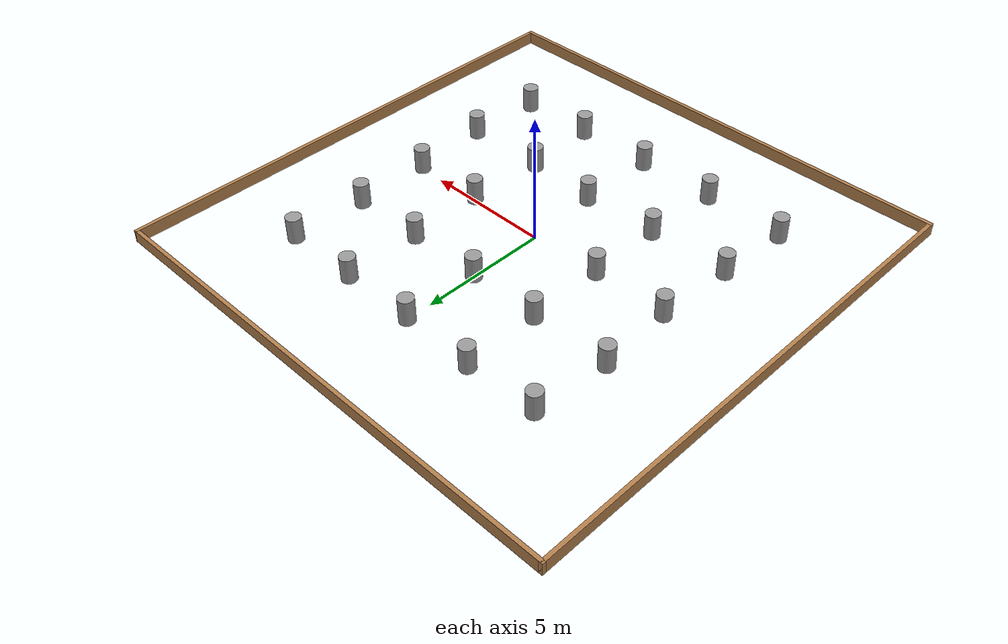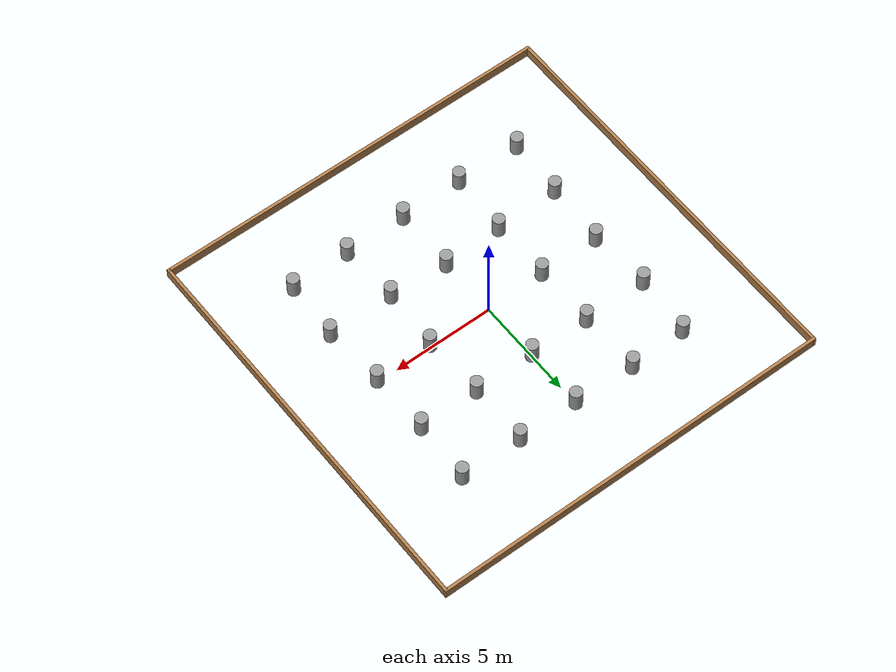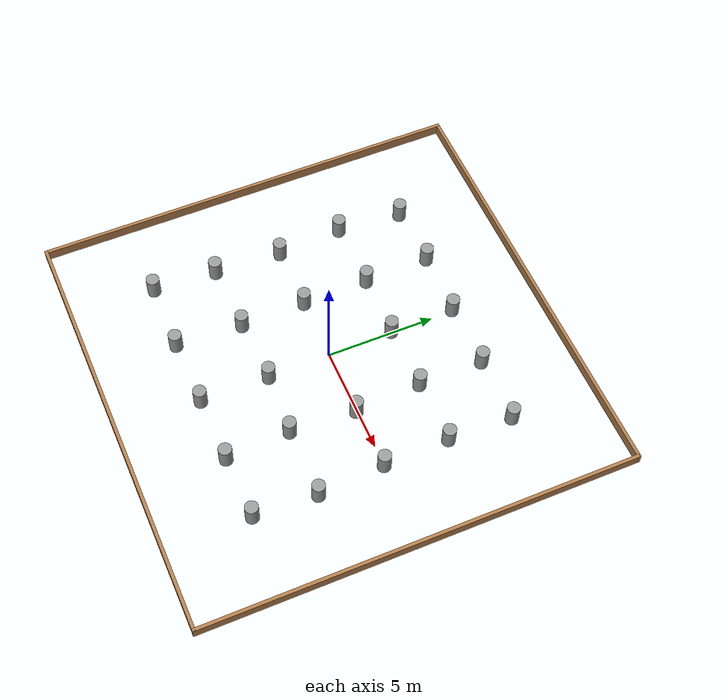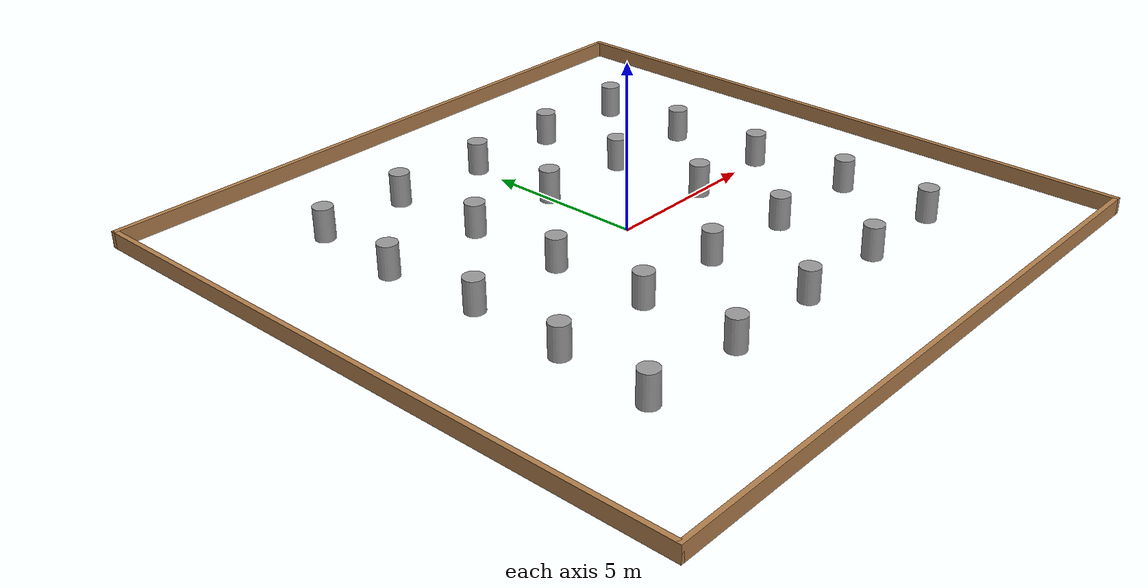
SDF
<sdf version="1.6">
 <model name="columns_model">
  <link name="Wall_0">
   <pose>0 9.925 0 0 -0 0</pose>
   <visual name="Wall_0_Visual">
    <pose>0 0 0.25 0 -0 0</pose>
    <geometry><box><size>20 0.15 0.5</size></box></geometry>
    <material>
     <script><uri>file://media/materials/scripts/gazebo.material</uri><name>Gazebo/Wood</name></script>
     <ambient>1 1 1 1</ambient>
    </material>
   </visual>
   <collision name="Wall_0_Collision">
    <pose>0 0 0.25 0 -0 0</pose>
    <geometry><box><size>20 0.15 0.5</size></box></geometry>
    <surface>
     <friction>
      <ode><mu>1</mu><mu2>1</mu2><fdir1>0 0 0</fdir1><slip1>0</slip1><slip2>0</slip2></ode>
      <torsional>
       <coefficient>1</coefficient>
       <patch_radius>0</patch_radius>
       <surface_radius>0</surface_radius>
       <use_patch_radius>1</use_patch_radius>
       <ode><slip>0</slip></ode>
      </torsional>
     </friction>
     <bounce><restitution_coefficient>0</restitution_coefficient><threshold>1e+06</threshold></bounce>
     <contact>
      <collide_without_contact>0</collide_without_contact>
      <collide_without_contact_bitmask>1</collide_without_contact_bitmask>
      <collide_bitmask>1</collide_bitmask>
      <ode>
       <soft_cfm>0</soft_cfm>
       <soft_erp>0.2</soft_erp>
       <kp>1e+13</kp>
       <kd>1</kd>
       <max_vel>0.01</max_vel>
       <min_depth>0</min_depth>
      </ode>
      <bullet>
       <split_impulse>1</split_impulse>
       <split_impulse_penetration_threshold>-0.01</split_impulse_penetration_threshold>
       <soft_cfm>0</soft_cfm>
       <soft_erp>0.2</soft_erp>
       <kp>1e+13</kp>
       <kd>1</kd>
      </bullet>
     </contact>
    </surface>
   </collision>
  </link>
  <link name="Wall_2">
   <pose>-9.925 0 0 0 0 -1.5708</pose>
   <visual name="Wall_2_Visual">
    <pose>0 0 0.25 0 -0 0</pose>
    <geometry><box><size>20 0.15 0.5</size></box></geometry>
    <material>
     <script><uri>file://media/materials/scripts/gazebo.material</uri><name>Gazebo/Wood</name></script>
     <ambient>1 1 1 1</ambient>
    </material>
   </visual>
   <collision name="Wall_2_Collision">
    <pose>0 0 0.25 0 -0 0</pose>
    <geometry><box><size>20 0.15 0.5</size></box></geometry>
    <surface>
     <friction>
      <ode><mu>1</mu><mu2>1</mu2><fdir1>0 0 0</fdir1><slip1>0</slip1><slip2>0</slip2></ode>
      <torsional>
       <coefficient>1</coefficient>
       <patch_radius>0</patch_radius>
       <surface_radius>0</surface_radius>
       <use_patch_radius>1</use_patch_radius>
       <ode><slip>0</slip></ode>
      </torsional>
     </friction>
     <bounce><restitution_coefficient>0</restitution_coefficient><threshold>1e+06</threshold></bounce>
     <contact>
      <collide_without_contact>0</collide_without_contact>
      <collide_without_contact_bitmask>1</collide_without_contact_bitmask>
      <collide_bitmask>1</collide_bitmask>
      <ode>
       <soft_cfm>0</soft_cfm>
       <soft_erp>0.2</soft_erp>
       <kp>1e+13</kp>
       <kd>1</kd>
       <max_vel>0.01</max_vel>
       <min_depth>0</min_depth>
      </ode>
      <bullet>
       <split_impulse>1</split_impulse>
       <split_impulse_penetration_threshold>-0.01</split_impulse_penetration_threshold>
       <soft_cfm>0</soft_cfm>
       <soft_erp>0.2</soft_erp>
       <kp>1e+13</kp>
       <kd>1</kd>
      </bullet>
     </contact>
    </surface>
   </collision>
  </link>
  <link name="Wall_3">
   <pose>0 -9.925 0 0 -0 0</pose>
   <visual name="Wall_3_Visual">
    <pose>0 0 0.25 0 -0 0</pose>
    <geometry><box><size>20 0.15 0.5</size></box></geometry>
    <material>
     <script><uri>file://media/materials/scripts/gazebo.material</uri><name>Gazebo/Wood</name></script>
     <ambient>1 1 1 1</ambient>
    </material>
   </visual>
   <collision name="Wall_3_Collision">
    <pose>0 0 0.25 0 -0 0</pose>
    <geometry><box><size>20 0.15 0.5</size></box></geometry>
    <surface>
     <friction>
      <ode><mu>1</mu><mu2>1</mu2><fdir1>0 0 0</fdir1><slip1>0</slip1><slip2>0</slip2></ode>
      <torsional>
       <coefficient>1</coefficient>
       <patch_radius>0</patch_radius>
       <surface_radius>0</surface_radius>
       <use_patch_radius>1</use_patch_radius>
       <ode><slip>0</slip></ode>
      </torsional>
     </friction>
     <bounce><restitution_coefficient>0</restitution_coefficient><threshold>1e+06</threshold></bounce>
     <contact>
      <collide_without_contact>0</collide_without_contact>
      <collide_without_contact_bitmask>1</collide_without_contact_bitmask>
      <collide_bitmask>1</collide_bitmask>
      <ode>
       <soft_cfm>0</soft_cfm>
       <soft_erp>0.2</soft_erp>
       <kp>1e+13</kp>
       <kd>1</kd>
       <max_vel>0.01</max_vel>
       <min_depth>0</min_depth>
      </ode>
      <bullet>
       <split_impulse>1</split_impulse>
       <split_impulse_penetration_threshold>-0.01</split_impulse_penetration_threshold>
       <soft_cfm>0</soft_cfm>
       <soft_erp>0.2</soft_erp>
       <kp>1e+13</kp>
       <kd>1</kd>
      </bullet>
     </contact>
    </surface>
   </collision>
  </link>
  <link name="Wall_4">
   <pose>9.925 0 0 0 -0 1.5708</pose>
   <visual name="Wall_4_Visual">
    <pose>0 0 0.25 0 -0 0</pose>
    <geometry><box><size>20 0.15 0.5</size></box></geometry>
    <material>
     <script><uri>file://media/materials/scripts/gazebo.material</uri><name>Gazebo/Wood</name></script>
     <ambient>1 1 1 1</ambient>
    </material>
   </visual>
   <collision name="Wall_4_Collision">
    <pose>0 0 0.25 0 -0 0</pose>
    <geometry><box><size>20 0.15 0.5</size></box></geometry>
    <surface>
     <friction>
      <ode><mu>1</mu><mu2>1</mu2><fdir1>0 0 0</fdir1><slip1>0</slip1><slip2>0</slip2></ode>
      <torsional>
       <coefficient>1</coefficient>
       <patch_radius>0</patch_radius>
       <surface_radius>0</surface_radius>
       <use_patch_radius>1</use_patch_radius>
       <ode><slip>0</slip></ode>
      </torsional>
     </friction>
     <bounce><restitution_coefficient>0</restitution_coefficient><threshold>1e+06</threshold></bounce>
     <contact>
      <collide_without_contact>0</collide_without_contact>
      <collide_without_contact_bitmask>1</collide_without_contact_bitmask>
      <collide_bitmask>1</collide_bitmask>
      <ode>
       <soft_cfm>0</soft_cfm>
       <soft_erp>0.2</soft_erp>
       <kp>1e+13</kp>
       <kd>1</kd>
       <max_vel>0.01</max_vel>
       <min_depth>0</min_depth>
      </ode>
      <bullet>
       <split_impulse>1</split_impulse>
       <split_impulse_penetration_threshold>-0.01</split_impulse_penetration_threshold>
       <soft_cfm>0</soft_cfm>
       <soft_erp>0.2</soft_erp>
       <kp>1e+13</kp>
       <kd>1</kd>
      </bullet>
     </contact>
    </surface>
   </collision>
  </link>
  <link name="link_0">
   <inertial>
    <mass>1</mass>
    <inertia><ixx>0.145833</ixx><ixy>0</ixy><ixz>0</ixz><iyy>0.145833</iyy><iyz>0</iyz><izz>0.125</izz></inertia>
   </inertial>
   <pose>0.107953 -2.9087 0.5 0 -0 0</pose>
   <visual name="visual">
    <geometry><cylinder><radius>0.3</radius><length>1</length></cylinder></geometry>
    <material>
     <lighting>1</lighting>
     <script><uri>file://media/materials/scripts/gazebo.material</uri><name>Gazebo/Grey</name></script>
     <shader type="vertex"><normal_map>__default__</normal_map></shader>
     <ambient>0.3 0.3 0.3 1</ambient>
     <diffuse>0.7 0.7 0.7 1</diffuse>
     <specular>0.01 0.01 0.01 1</specular>
     <emissive>0 0 0 1</emissive>
    </material>
   </visual>
   <collision name="collision">
    <geometry><cylinder><radius>0.3</radius><length>1</length></cylinder></geometry>
    <surface>
     <friction>
      <ode><mu>1</mu><mu2>1</mu2><fdir1>0 0 0</fdir1><slip1>0</slip1><slip2>0</slip2></ode>
      <torsional>
       <coefficient>1</coefficient>
       <patch_radius>0</patch_radius>
       <surface_radius>0</surface_radius>
       <use_patch_radius>1</use_patch_radius>
       <ode><slip>0</slip></ode>
      </torsional>
     </friction>
     <bounce><restitution_coefficient>0</restitution_coefficient><threshold>1e+06</threshold></bounce>
     <contact>
      <collide_without_contact>0</collide_without_contact>
      <collide_without_contact_bitmask>1</collide_without_contact_bitmask>
      <collide_bitmask>1</collide_bitmask>
      <ode>
       <soft_cfm>0</soft_cfm>
       <soft_erp>0.2</soft_erp>
       <kp>1e+13</kp>
       <kd>1</kd>
       <max_vel>0.01</max_vel>
       <min_depth>0</min_depth>
      </ode>
      <bullet>
       <split_impulse>1</split_impulse>
       <split_impulse_penetration_threshold>-0.01</split_impulse_penetration_threshold>
       <soft_cfm>0</soft_cfm>
       <soft_erp>0.2</soft_erp>
       <kp>1e+13</kp>
       <kd>1</kd>
      </bullet>
     </contact>
    </surface>
   </collision>
  </link>
  <link name="link_0_clone">
   <inertial>
    <mass>1</mass>
    <inertia><ixx>0.145833</ixx><ixy>0</ixy><ixz>0</ixz><iyy>0.145833</iyy><iyz>0</iyz><izz>0.125</izz></inertia>
   </inertial>
   <pose>0 3 0.5 0 -0 0</pose>
   <visual name="visual">
    <geometry><cylinder><radius>0.3</radius><length>1</length></cylinder></geometry>
    <material>
     <lighting>1</lighting>
     <script><uri>file://media/materials/scripts/gazebo.material</uri><name>Gazebo/Grey</name></script>
     <shader type="vertex"><normal_map>__default__</normal_map></shader>
     <ambient>0.3 0.3 0.3 1</ambient>
     <diffuse>0.7 0.7 0.7 1</diffuse>
     <specular>0.01 0.01 0.01 1</specular>
     <emissive>0 0 0 1</emissive>
    </material>
   </visual>
   <collision name="collision">
    <geometry><cylinder><radius>0.3</radius><length>1</length></cylinder></geometry>
    <surface>
     <friction>
      <ode><mu>1</mu><mu2>1</mu2><fdir1>0 0 0</fdir1><slip1>0</slip1><slip2>0</slip2></ode>
      <torsional>
       <coefficient>1</coefficient>
       <patch_radius>0</patch_radius>
       <surface_radius>0</surface_radius>
       <use_patch_radius>1</use_patch_radius>
       <ode><slip>0</slip></ode>
      </torsional>
     </friction>
     <bounce><restitution_coefficient>0</restitution_coefficient><threshold>1e+06</threshold></bounce>
     <contact>
      <collide_without_contact>0</collide_without_contact>
      <collide_without_contact_bitmask>1</collide_without_contact_bitmask>
      <collide_bitmask>1</collide_bitmask>
      <ode>
       <soft_cfm>0</soft_cfm>
       <soft_erp>0.2</soft_erp>
       <kp>1e+13</kp>
       <kd>1</kd>
       <max_vel>0.01</max_vel>
       <min_depth>0</min_depth>
      </ode>
      <bullet>
       <split_impulse>1</split_impulse>
       <split_impulse_penetration_threshold>-0.01</split_impulse_penetration_threshold>
       <soft_cfm>0</soft_cfm>
       <soft_erp>0.2</soft_erp>
       <kp>1e+13</kp>
       <kd>1</kd>
      </bullet>
     </contact>
    </surface>
   </collision>
  </link>
  <link name="link_0_clone_0">
   <inertial>
    <mass>1</mass>
    <inertia><ixx>0.145833</ixx><ixy>0</ixy><ixz>0</ixz><iyy>0.145833</iyy><iyz>0</iyz><izz>0.125</izz></inertia>
   </inertial>
   <pose>3.15995 -0.065507 0.5 0 -0 0</pose>
   <visual name="visual">
    <geometry><cylinder><radius>0.3</radius><length>1</length></cylinder></geometry>
    <material>
     <lighting>1</lighting>
     <script><uri>file://media/materials/scripts/gazebo.material</uri><name>Gazebo/Grey</name></script>
     <shader type="vertex"><normal_map>__default__</normal_map></shader>
     <ambient>0.3 0.3 0.3 1</ambient>
     <diffuse>0.7 0.7 0.7 1</diffuse>
     <specular>0.01 0.01 0.01 1</specular>
     <emissive>0 0 0 1</emissive>
    </material>
   </visual>
   <collision name="collision">
    <geometry><cylinder><radius>0.3</radius><length>1</length></cylinder></geometry>
    <surface>
     <friction>
      <ode><mu>1</mu><mu2>1</mu2><fdir1>0 0 0</fdir1><slip1>0</slip1><slip2>0</slip2></ode>
      <torsional>
       <coefficient>1</coefficient>
       <patch_radius>0</patch_radius>
       <surface_radius>0</surface_radius>
       <use_patch_radius>1</use_patch_radius>
       <ode><slip>0</slip></ode>
      </torsional>
     </friction>
     <bounce><restitution_coefficient>0</restitution_coefficient><threshold>1e+06</threshold></bounce>
     <contact>
      <collide_without_contact>0</collide_without_contact>
      <collide_without_contact_bitmask>1</collide_without_contact_bitmask>
      <collide_bitmask>1</collide_bitmask>
      <ode>
       <soft_cfm>0</soft_cfm>
       <soft_erp>0.2</soft_erp>
       <kp>1e+13</kp>
       <kd>1</kd>
       <max_vel>0.01</max_vel>
       <min_depth>0</min_depth>
      </ode>
      <bullet>
       <split_impulse>1</split_impulse>
       <split_impulse_penetration_threshold>-0.01</split_impulse_penetration_threshold>
       <soft_cfm>0</soft_cfm>
       <soft_erp>0.2</soft_erp>
       <kp>1e+13</kp>
       <kd>1</kd>
      </bullet>
     </contact>
    </surface>
   </collision>
  </link>
  <link name="link_0_clone_1">
   <inertial>
    <mass>1</mass>
    <inertia><ixx>0.145833</ixx><ixy>0</ixy><ixz>0</ixz><iyy>0.145833</iyy><iyz>0</iyz><izz>0.125</izz></inertia>
   </inertial>
   <pose>2.98902 -3.08623 0.5 0 -0 0</pose>
   <visual name="visual">
    <geometry><cylinder><radius>0.3</radius><length>1</length></cylinder></geometry>
    <material>
     <lighting>1</lighting>
     <script><uri>file://media/materials/scripts/gazebo.material</uri><name>Gazebo/Grey</name></script>
     <shader type="vertex"><normal_map>__default__</normal_map></shader>
     <ambient>0.3 0.3 0.3 1</ambient>
     <diffuse>0.7 0.7 0.7 1</diffuse>
     <specular>0.01 0.01 0.01 1</specular>
     <emissive>0 0 0 1</emissive>
    </material>
   </visual>
   <collision name="collision">
    <geometry><cylinder><radius>0.3</radius><length>1</length></cylinder></geometry>
    <surface>
     <friction>
      <ode><mu>1</mu><mu2>1</mu2><fdir1>0 0 0</fdir1><slip1>0</slip1><slip2>0</slip2></ode>
      <torsional>
       <coefficient>1</coefficient>
       <patch_radius>0</patch_radius>
       <surface_radius>0</surface_radius>
       <use_patch_radius>1</use_patch_radius>
       <ode><slip>0</slip></ode>
      </torsional>
     </friction>
     <bounce><restitution_coefficient>0</restitution_coefficient><threshold>1e+06</threshold></bounce>
     <contact>
      <collide_without_contact>0</collide_without_contact>
      <collide_without_contact_bitmask>1</collide_without_contact_bitmask>
      <collide_bitmask>1</collide_bitmask>
      <ode>
       <soft_cfm>0</soft_cfm>
       <soft_erp>0.2</soft_erp>
       <kp>1e+13</kp>
       <kd>1</kd>
       <max_vel>0.01</max_vel>
       <min_depth>0</min_depth>
      </ode>
      <bullet>
       <split_impulse>1</split_impulse>
       <split_impulse_penetration_threshold>-0.01</split_impulse_penetration_threshold>
       <soft_cfm>0</soft_cfm>
       <soft_erp>0.2</soft_erp>
       <kp>1e+13</kp>
       <kd>1</kd>
      </bullet>
     </contact>
    </surface>
   </collision>
  </link>
  <link name="link_0_clone_10">
   <inertial>
    <mass>1</mass>
    <inertia><ixx>0.145833</ixx><ixy>0</ixy><ixz>0</ixz><iyy>0.145833</iyy><iyz>0</iyz><izz>0.125</izz></inertia>
   </inertial>
   <pose>-6.22561 -6.00388 0.5 0 -0 0</pose>
   <visual name="visual">
    <geometry><cylinder><radius>0.3</radius><length>1</length></cylinder></geometry>
    <material>
     <lighting>1</lighting>
     <script><uri>file://media/materials/scripts/gazebo.material</uri><name>Gazebo/Grey</name></script>
     <shader type="vertex"><normal_map>__default__</normal_map></shader>
     <ambient>0.3 0.3 0.3 1</ambient>
     <diffuse>0.7 0.7 0.7 1</diffuse>
     <specular>0.01 0.01 0.01 1</specular>
     <emissive>0 0 0 1</emissive>
    </material>
   </visual>
   <collision name="collision">
    <geometry><cylinder><radius>0.3</radius><length>1</length></cylinder></geometry>
    <surface>
     <friction>
      <ode><mu>1</mu><mu2>1</mu2><fdir1>0 0 0</fdir1><slip1>0</slip1><slip2>0</slip2></ode>
      <torsional>
       <coefficient>1</coefficient>
       <patch_radius>0</patch_radius>
       <surface_radius>0</surface_radius>
       <use_patch_radius>1</use_patch_radius>
       <ode><slip>0</slip></ode>
      </torsional>
     </friction>
     <bounce><restitution_coefficient>0</restitution_coefficient><threshold>1e+06</threshold></bounce>
     <contact>
      <collide_without_contact>0</collide_without_contact>
      <collide_without_contact_bitmask>1</collide_without_contact_bitmask>
      <collide_bitmask>1</collide_bitmask>
      <ode>
       <soft_cfm>0</soft_cfm>
       <soft_erp>0.2</soft_erp>
       <kp>1e+13</kp>
       <kd>1</kd>
       <max_vel>0.01</max_vel>
       <min_depth>0</min_depth>
      </ode>
      <bullet>
       <split_impulse>1</split_impulse>
       <split_impulse_penetration_threshold>-0.01</split_impulse_penetration_threshold>
       <soft_cfm>0</soft_cfm>
       <soft_erp>0.2</soft_erp>
       <kp>1e+13</kp>
       <kd>1</kd>
      </bullet>
     </contact>
    </surface>
   </collision>
  </link>
  <link name="link_0_clone_11">
   <inertial>
    <mass>1</mass>
    <inertia><ixx>0.145833</ixx><ixy>0</ixy><ixz>0</ixz><iyy>0.145833</iyy><iyz>0</iyz><izz>0.125</izz></inertia>
   </inertial>
   <pose>-6.0599 -3.08284 0.5 0 -0 0</pose>
   <visual name="visual">
    <geometry><cylinder><radius>0.3</radius><length>1</length></cylinder></geometry>
    <material>
     <lighting>1</lighting>
     <script><uri>file://media/materials/scripts/gazebo.material</uri><name>Gazebo/Grey</name></script>
     <shader type="vertex"><normal_map>__default__</normal_map></shader>
     <ambient>0.3 0.3 0.3 1</ambient>
     <diffuse>0.7 0.7 0.7 1</diffuse>
     <specular>0.01 0.01 0.01 1</specular>
     <emissive>0 0 0 1</emissive>
    </material>
   </visual>
   <collision name="collision">
    <geometry><cylinder><radius>0.3</radius><length>1</length></cylinder></geometry>
    <surface>
     <friction>
      <ode><mu>1</mu><mu2>1</mu2><fdir1>0 0 0</fdir1><slip1>0</slip1><slip2>0</slip2></ode>
      <torsional>
       <coefficient>1</coefficient>
       <patch_radius>0</patch_radius>
       <surface_radius>0</surface_radius>
       <use_patch_radius>1</use_patch_radius>
       <ode><slip>0</slip></ode>
      </torsional>
     </friction>
     <bounce><restitution_coefficient>0</restitution_coefficient><threshold>1e+06</threshold></bounce>
     <contact>
      <collide_without_contact>0</collide_without_contact>
      <collide_without_contact_bitmask>1</collide_without_contact_bitmask>
      <collide_bitmask>1</collide_bitmask>
      <ode>
       <soft_cfm>0</soft_cfm>
       <soft_erp>0.2</soft_erp>
       <kp>1e+13</kp>
       <kd>1</kd>
       <max_vel>0.01</max_vel>
       <min_depth>0</min_depth>
      </ode>
      <bullet>
       <split_impulse>1</split_impulse>
       <split_impulse_penetration_threshold>-0.01</split_impulse_penetration_threshold>
       <soft_cfm>0</soft_cfm>
       <soft_erp>0.2</soft_erp>
       <kp>1e+13</kp>
       <kd>1</kd>
      </bullet>
     </contact>
    </surface>
   </collision>
  </link>
  <link name="link_0_clone_12">
   <inertial>
    <mass>1</mass>
    <inertia><ixx>0.145833</ixx><ixy>0</ixy><ixz>0</ixz><iyy>0.145833</iyy><iyz>0</iyz><izz>0.125</izz></inertia>
   </inertial>
   <pose>-5.89543 0.018668 0.5 0 -0 0</pose>
   <visual name="visual">
    <geometry><cylinder><radius>0.3</radius><length>1</length></cylinder></geometry>
    <material>
     <lighting>1</lighting>
     <script><uri>file://media/materials/scripts/gazebo.material</uri><name>Gazebo/Grey</name></script>
     <shader type="vertex"><normal_map>__default__</normal_map></shader>
     <ambient>0.3 0.3 0.3 1</ambient>
     <diffuse>0.7 0.7 0.7 1</diffuse>
     <specular>0.01 0.01 0.01 1</specular>
     <emissive>0 0 0 1</emissive>
    </material>
   </visual>
   <collision name="collision">
    <geometry><cylinder><radius>0.3</radius><length>1</length></cylinder></geometry>
    <surface>
     <friction>
      <ode><mu>1</mu><mu2>1</mu2><fdir1>0 0 0</fdir1><slip1>0</slip1><slip2>0</slip2></ode>
      <torsional>
       <coefficient>1</coefficient>
       <patch_radius>0</patch_radius>
       <surface_radius>0</surface_radius>
       <use_patch_radius>1</use_patch_radius>
       <ode><slip>0</slip></ode>
      </torsional>
     </friction>
     <bounce><restitution_coefficient>0</restitution_coefficient><threshold>1e+06</threshold></bounce>
     <contact>
      <collide_without_contact>0</collide_without_contact>
      <collide_without_contact_bitmask>1</collide_without_contact_bitmask>
      <collide_bitmask>1</collide_bitmask>
      <ode>
       <soft_cfm>0</soft_cfm>
       <soft_erp>0.2</soft_erp>
       <kp>1e+13</kp>
       <kd>1</kd>
       <max_vel>0.01</max_vel>
       <min_depth>0</min_depth>
      </ode>
      <bullet>
       <split_impulse>1</split_impulse>
       <split_impulse_penetration_threshold>-0.01</split_impulse_penetration_threshold>
       <soft_cfm>0</soft_cfm>
       <soft_erp>0.2</soft_erp>
       <kp>1e+13</kp>
       <kd>1</kd>
      </bullet>
     </contact>
    </surface>
   </collision>
  </link>
  <link name="link_0_clone_13">
   <inertial>
    <mass>1</mass>
    <inertia><ixx>0.145833</ixx><ixy>0</ixy><ixz>0</ixz><iyy>0.145833</iyy><iyz>0</iyz><izz>0.125</izz></inertia>
   </inertial>
   <pose>-6.09693 3.05557 0.5 0 -0 0</pose>
   <visual name="visual">
    <geometry><cylinder><radius>0.3</radius><length>1</length></cylinder></geometry>
    <material>
     <lighting>1</lighting>
     <script><uri>file://media/materials/scripts/gazebo.material</uri><name>Gazebo/Grey</name></script>
     <shader type="vertex"><normal_map>__default__</normal_map></shader>
     <ambient>0.3 0.3 0.3 1</ambient>
     <diffuse>0.7 0.7 0.7 1</diffuse>
     <specular>0.01 0.01 0.01 1</specular>
     <emissive>0 0 0 1</emissive>
    </material>
   </visual>
   <collision name="collision">
    <geometry><cylinder><radius>0.3</radius><length>1</length></cylinder></geometry>
    <surface>
     <friction>
      <ode><mu>1</mu><mu2>1</mu2><fdir1>0 0 0</fdir1><slip1>0</slip1><slip2>0</slip2></ode>
      <torsional>
       <coefficient>1</coefficient>
       <patch_radius>0</patch_radius>
       <surface_radius>0</surface_radius>
       <use_patch_radius>1</use_patch_radius>
       <ode><slip>0</slip></ode>
      </torsional>
     </friction>
     <bounce><restitution_coefficient>0</restitution_coefficient><threshold>1e+06</threshold></bounce>
     <contact>
      <collide_without_contact>0</collide_without_contact>
      <collide_without_contact_bitmask>1</collide_without_contact_bitmask>
      <collide_bitmask>1</collide_bitmask>
      <ode>
       <soft_cfm>0</soft_cfm>
       <soft_erp>0.2</soft_erp>
       <kp>1e+13</kp>
       <kd>1</kd>
       <max_vel>0.01</max_vel>
       <min_depth>0</min_depth>
      </ode>
      <bullet>
       <split_impulse>1</split_impulse>
       <split_impulse_penetration_threshold>-0.01</split_impulse_penetration_threshold>
       <soft_cfm>0</soft_cfm>
       <soft_erp>0.2</soft_erp>
       <kp>1e+13</kp>
       <kd>1</kd>
      </bullet>
     </contact>
    </surface>
   </collision>
  </link>
  <link name="link_0_clone_14">
   <inertial>
    <mass>1</mass>
    <inertia><ixx>0.145833</ixx><ixy>0</ixy><ixz>0</ixz><iyy>0.145833</iyy><iyz>0</iyz><izz>0.125</izz></inertia>
   </inertial>
   <pose>-5.85129 6.03455 0.5 0 -0 0</pose>
   <visual name="visual">
    <geometry><cylinder><radius>0.3</radius><length>1</length></cylinder></geometry>
    <material>
     <lighting>1</lighting>
     <script><uri>file://media/materials/scripts/gazebo.material</uri><name>Gazebo/Grey</name></script>
     <shader type="vertex"><normal_map>__default__</normal_map></shader>
     <ambient>0.3 0.3 0.3 1</ambient>
     <diffuse>0.7 0.7 0.7 1</diffuse>
     <specular>0.01 0.01 0.01 1</specular>
     <emissive>0 0 0 1</emissive>
    </material>
   </visual>
   <collision name="collision">
    <geometry><cylinder><radius>0.3</radius><length>1</length></cylinder></geometry>
    <surface>
     <friction>
      <ode><mu>1</mu><mu2>1</mu2><fdir1>0 0 0</fdir1><slip1>0</slip1><slip2>0</slip2></ode>
      <torsional>
       <coefficient>1</coefficient>
       <patch_radius>0</patch_radius>
       <surface_radius>0</surface_radius>
       <use_patch_radius>1</use_patch_radius>
       <ode><slip>0</slip></ode>
      </torsional>
     </friction>
     <bounce><restitution_coefficient>0</restitution_coefficient><threshold>1e+06</threshold></bounce>
     <contact>
      <collide_without_contact>0</collide_without_contact>
      <collide_without_contact_bitmask>1</collide_without_contact_bitmask>
      <collide_bitmask>1</collide_bitmask>
      <ode>
       <soft_cfm>0</soft_cfm>
       <soft_erp>0.2</soft_erp>
       <kp>1e+13</kp>
       <kd>1</kd>
       <max_vel>0.01</max_vel>
       <min_depth>0</min_depth>
      </ode>
      <bullet>
       <split_impulse>1</split_impulse>
       <split_impulse_penetration_threshold>-0.01</split_impulse_penetration_threshold>
       <soft_cfm>0</soft_cfm>
       <soft_erp>0.2</soft_erp>
       <kp>1e+13</kp>
       <kd>1</kd>
      </bullet>
     </contact>
    </surface>
   </collision>
  </link>
  <link name="link_0_clone_15">
   <inertial>
    <mass>1</mass>
    <inertia><ixx>0.145833</ixx><ixy>0</ixy><ixz>0</ixz><iyy>0.145833</iyy><iyz>0</iyz><izz>0.125</izz></inertia>
   </inertial>
   <pose>-3.00934 6.11637 0.5 0 -0 0</pose>
   <visual name="visual">
    <geometry><cylinder><radius>0.3</radius><length>1</length></cylinder></geometry>
    <material>
     <lighting>1</lighting>
     <script><uri>file://media/materials/scripts/gazebo.material</uri><name>Gazebo/Grey</name></script>
     <shader type="vertex"><normal_map>__default__</normal_map></shader>
     <ambient>0.3 0.3 0.3 1</ambient>
     <diffuse>0.7 0.7 0.7 1</diffuse>
     <specular>0.01 0.01 0.01 1</specular>
     <emissive>0 0 0 1</emissive>
    </material>
   </visual>
   <collision name="collision">
    <geometry><cylinder><radius>0.3</radius><length>1</length></cylinder></geometry>
    <surface>
     <friction>
      <ode><mu>1</mu><mu2>1</mu2><fdir1>0 0 0</fdir1><slip1>0</slip1><slip2>0</slip2></ode>
      <torsional>
       <coefficient>1</coefficient>
       <patch_radius>0</patch_radius>
       <surface_radius>0</surface_radius>
       <use_patch_radius>1</use_patch_radius>
       <ode><slip>0</slip></ode>
      </torsional>
     </friction>
     <bounce><restitution_coefficient>0</restitution_coefficient><threshold>1e+06</threshold></bounce>
     <contact>
      <collide_without_contact>0</collide_without_contact>
      <collide_without_contact_bitmask>1</collide_without_contact_bitmask>
      <collide_bitmask>1</collide_bitmask>
      <ode>
       <soft_cfm>0</soft_cfm>
       <soft_erp>0.2</soft_erp>
       <kp>1e+13</kp>
       <kd>1</kd>
       <max_vel>0.01</max_vel>
       <min_depth>0</min_depth>
      </ode>
      <bullet>
       <split_impulse>1</split_impulse>
       <split_impulse_penetration_threshold>-0.01</split_impulse_penetration_threshold>
       <soft_cfm>0</soft_cfm>
       <soft_erp>0.2</soft_erp>
       <kp>1e+13</kp>
       <kd>1</kd>
      </bullet>
     </contact>
    </surface>
   </collision>
  </link>
  <link name="link_0_clone_16">
   <inertial>
    <mass>1</mass>
    <inertia><ixx>0.145833</ixx><ixy>0</ixy><ixz>0</ixz><iyy>0.145833</iyy><iyz>0</iyz><izz>0.125</izz></inertia>
   </inertial>
   <pose>0 6 0.5 0 -0 0</pose>
   <visual name="visual">
    <geometry><cylinder><radius>0.3</radius><length>1</length></cylinder></geometry>
    <material>
     <lighting>1</lighting>
     <script><uri>file://media/materials/scripts/gazebo.material</uri><name>Gazebo/Grey</name></script>
     <shader type="vertex"><normal_map>__default__</normal_map></shader>
     <ambient>0.3 0.3 0.3 1</ambient>
     <diffuse>0.7 0.7 0.7 1</diffuse>
     <specular>0.01 0.01 0.01 1</specular>
     <emissive>0 0 0 1</emissive>
    </material>
   </visual>
   <collision name="collision">
    <geometry><cylinder><radius>0.3</radius><length>1</length></cylinder></geometry>
    <surface>
     <friction>
      <ode><mu>1</mu><mu2>1</mu2><fdir1>0 0 0</fdir1><slip1>0</slip1><slip2>0</slip2></ode>
      <torsional>
       <coefficient>1</coefficient>
       <patch_radius>0</patch_radius>
       <surface_radius>0</surface_radius>
       <use_patch_radius>1</use_patch_radius>
       <ode><slip>0</slip></ode>
      </torsional>
     </friction>
     <bounce><restitution_coefficient>0</restitution_coefficient><threshold>1e+06</threshold></bounce>
     <contact>
      <collide_without_contact>0</collide_without_contact>
      <collide_without_contact_bitmask>1</collide_without_contact_bitmask>
      <collide_bitmask>1</collide_bitmask>
      <ode>
       <soft_cfm>0</soft_cfm>
       <soft_erp>0.2</soft_erp>
       <kp>1e+13</kp>
       <kd>1</kd>
       <max_vel>0.01</max_vel>
       <min_depth>0</min_depth>
      </ode>
      <bullet>
       <split_impulse>1</split_impulse>
       <split_impulse_penetration_threshold>-0.01</split_impulse_penetration_threshold>
       <soft_cfm>0</soft_cfm>
       <soft_erp>0.2</soft_erp>
       <kp>1e+13</kp>
       <kd>1</kd>
      </bullet>
     </contact>
    </surface>
   </collision>
  </link>
  <link name="link_0_clone_17">
   <inertial>
    <mass>1</mass>
    <inertia><ixx>0.145833</ixx><ixy>0</ixy><ixz>0</ixz><iyy>0.145833</iyy><iyz>0</iyz><izz>0.125</izz></inertia>
   </inertial>
   <pose>3 6 0.5 0 -0 0</pose>
   <visual name="visual">
    <geometry><cylinder><radius>0.3</radius><length>1</length></cylinder></geometry>
    <material>
     <lighting>1</lighting>
     <script><uri>file://media/materials/scripts/gazebo.material</uri><name>Gazebo/Grey</name></script>
     <shader type="vertex"><normal_map>__default__</normal_map></shader>
     <ambient>0.3 0.3 0.3 1</ambient>
     <diffuse>0.7 0.7 0.7 1</diffuse>
     <specular>0.01 0.01 0.01 1</specular>
     <emissive>0 0 0 1</emissive>
    </material>
   </visual>
   <collision name="collision">
    <geometry><cylinder><radius>0.3</radius><length>1</length></cylinder></geometry>
    <surface>
     <friction>
      <ode><mu>1</mu><mu2>1</mu2><fdir1>0 0 0</fdir1><slip1>0</slip1><slip2>0</slip2></ode>
      <torsional>
       <coefficient>1</coefficient>
       <patch_radius>0</patch_radius>
       <surface_radius>0</surface_radius>
       <use_patch_radius>1</use_patch_radius>
       <ode><slip>0</slip></ode>
      </torsional>
     </friction>
     <bounce><restitution_coefficient>0</restitution_coefficient><threshold>1e+06</threshold></bounce>
     <contact>
      <collide_without_contact>0</collide_without_contact>
      <collide_without_contact_bitmask>1</collide_without_contact_bitmask>
      <collide_bitmask>1</collide_bitmask>
      <ode>
       <soft_cfm>0</soft_cfm>
       <soft_erp>0.2</soft_erp>
       <kp>1e+13</kp>
       <kd>1</kd>
       <max_vel>0.01</max_vel>
       <min_depth>0</min_depth>
      </ode>
      <bullet>
       <split_impulse>1</split_impulse>
       <split_impulse_penetration_threshold>-0.01</split_impulse_penetration_threshold>
       <soft_cfm>0</soft_cfm>
       <soft_erp>0.2</soft_erp>
       <kp>1e+13</kp>
       <kd>1</kd>
      </bullet>
     </contact>
    </surface>
   </collision>
  </link>
  <link name="link_0_clone_18">
   <inertial>
    <mass>1</mass>
    <inertia><ixx>0.145833</ixx><ixy>0</ixy><ixz>0</ixz><iyy>0.145833</iyy><iyz>0</iyz><izz>0.125</izz></inertia>
   </inertial>
   <pose>6.22974 -3.10295 0.5 0 -0 0</pose>
   <visual name="visual">
    <geometry><cylinder><radius>0.3</radius><length>1</length></cylinder></geometry>
    <material>
     <lighting>1</lighting>
     <script><uri>file://media/materials/scripts/gazebo.material</uri><name>Gazebo/Grey</name></script>
     <shader type="vertex"><normal_map>__default__</normal_map></shader>
     <ambient>0.3 0.3 0.3 1</ambient>
     <diffuse>0.7 0.7 0.7 1</diffuse>
     <specular>0.01 0.01 0.01 1</specular>
     <emissive>0 0 0 1</emissive>
    </material>
   </visual>
   <collision name="collision">
    <geometry><cylinder><radius>0.3</radius><length>1</length></cylinder></geometry>
    <surface>
     <friction>
      <ode><mu>1</mu><mu2>1</mu2><fdir1>0 0 0</fdir1><slip1>0</slip1><slip2>0</slip2></ode>
      <torsional>
       <coefficient>1</coefficient>
       <patch_radius>0</patch_radius>
       <surface_radius>0</surface_radius>
       <use_patch_radius>1</use_patch_radius>
       <ode><slip>0</slip></ode>
      </torsional>
     </friction>
     <bounce><restitution_coefficient>0</restitution_coefficient><threshold>1e+06</threshold></bounce>
     <contact>
      <collide_without_contact>0</collide_without_contact>
      <collide_without_contact_bitmask>1</collide_without_contact_bitmask>
      <collide_bitmask>1</collide_bitmask>
      <ode>
       <soft_cfm>0</soft_cfm>
       <soft_erp>0.2</soft_erp>
       <kp>1e+13</kp>
       <kd>1</kd>
       <max_vel>0.01</max_vel>
       <min_depth>0</min_depth>
      </ode>
      <bullet>
       <split_impulse>1</split_impulse>
       <split_impulse_penetration_threshold>-0.01</split_impulse_penetration_threshold>
       <soft_cfm>0</soft_cfm>
       <soft_erp>0.2</soft_erp>
       <kp>1e+13</kp>
       <kd>1</kd>
      </bullet>
     </contact>
    </surface>
   </collision>
  </link>
  <link name="link_0_clone_19">
   <inertial>
    <mass>1</mass>
    <inertia><ixx>0.145833</ixx><ixy>0</ixy><ixz>0</ixz><iyy>0.145833</iyy><iyz>0</iyz><izz>0.125</izz></inertia>
   </inertial>
   <pose>6.01692 -0.020745 0.5 0 -0 0</pose>
   <visual name="visual">
    <geometry><cylinder><radius>0.3</radius><length>1</length></cylinder></geometry>
    <material>
     <lighting>1</lighting>
     <script><uri>file://media/materials/scripts/gazebo.material</uri><name>Gazebo/Grey</name></script>
     <shader type="vertex"><normal_map>__default__</normal_map></shader>
     <ambient>0.3 0.3 0.3 1</ambient>
     <diffuse>0.7 0.7 0.7 1</diffuse>
     <specular>0.01 0.01 0.01 1</specular>
     <emissive>0 0 0 1</emissive>
    </material>
   </visual>
   <collision name="collision">
    <geometry><cylinder><radius>0.3</radius><length>1</length></cylinder></geometry>
    <surface>
     <friction>
      <ode><mu>1</mu><mu2>1</mu2><fdir1>0 0 0</fdir1><slip1>0</slip1><slip2>0</slip2></ode>
      <torsional>
       <coefficient>1</coefficient>
       <patch_radius>0</patch_radius>
       <surface_radius>0</surface_radius>
       <use_patch_radius>1</use_patch_radius>
       <ode><slip>0</slip></ode>
      </torsional>
     </friction>
     <bounce><restitution_coefficient>0</restitution_coefficient><threshold>1e+06</threshold></bounce>
     <contact>
      <collide_without_contact>0</collide_without_contact>
      <collide_without_contact_bitmask>1</collide_without_contact_bitmask>
      <collide_bitmask>1</collide_bitmask>
      <ode>
       <soft_cfm>0</soft_cfm>
       <soft_erp>0.2</soft_erp>
       <kp>1e+13</kp>
       <kd>1</kd>
       <max_vel>0.01</max_vel>
       <min_depth>0</min_depth>
      </ode>
      <bullet>
       <split_impulse>1</split_impulse>
       <split_impulse_penetration_threshold>-0.01</split_impulse_penetration_threshold>
       <soft_cfm>0</soft_cfm>
       <soft_erp>0.2</soft_erp>
       <kp>1e+13</kp>
       <kd>1</kd>
      </bullet>
     </contact>
    </surface>
   </collision>
  </link>
  <link name="link_0_clone_2">
   <inertial>
    <mass>1</mass>
    <inertia><ixx>0.145833</ixx><ixy>0</ixy><ixz>0</ixz><iyy>0.145833</iyy><iyz>0</iyz><izz>0.125</izz></inertia>
   </inertial>
   <pose>-2.86952 -3.01769 0.5 0 -0 0</pose>
   <visual name="visual">
    <geometry><cylinder><radius>0.3</radius><length>1</length></cylinder></geometry>
    <material>
     <lighting>1</lighting>
     <script><uri>file://media/materials/scripts/gazebo.material</uri><name>Gazebo/Grey</name></script>
     <shader type="vertex"><normal_map>__default__</normal_map></shader>
     <ambient>0.3 0.3 0.3 1</ambient>
     <diffuse>0.7 0.7 0.7 1</diffuse>
     <specular>0.01 0.01 0.01 1</specular>
     <emissive>0 0 0 1</emissive>
    </material>
   </visual>
   <collision name="collision">
    <geometry><cylinder><radius>0.3</radius><length>1</length></cylinder></geometry>
    <surface>
     <friction>
      <ode><mu>1</mu><mu2>1</mu2><fdir1>0 0 0</fdir1><slip1>0</slip1><slip2>0</slip2></ode>
      <torsional>
       <coefficient>1</coefficient>
       <patch_radius>0</patch_radius>
       <surface_radius>0</surface_radius>
       <use_patch_radius>1</use_patch_radius>
       <ode><slip>0</slip></ode>
      </torsional>
     </friction>
     <bounce><restitution_coefficient>0</restitution_coefficient><threshold>1e+06</threshold></bounce>
     <contact>
      <collide_without_contact>0</collide_without_contact>
      <collide_without_contact_bitmask>1</collide_without_contact_bitmask>
      <collide_bitmask>1</collide_bitmask>
      <ode>
       <soft_cfm>0</soft_cfm>
       <soft_erp>0.2</soft_erp>
       <kp>1e+13</kp>
       <kd>1</kd>
       <max_vel>0.01</max_vel>
       <min_depth>0</min_depth>
      </ode>
      <bullet>
       <split_impulse>1</split_impulse>
       <split_impulse_penetration_threshold>-0.01</split_impulse_penetration_threshold>
       <soft_cfm>0</soft_cfm>
       <soft_erp>0.2</soft_erp>
       <kp>1e+13</kp>
       <kd>1</kd>
      </bullet>
     </contact>
    </surface>
   </collision>
  </link>
  <link name="link_0_clone_20">
   <inertial>
    <mass>1</mass>
    <inertia><ixx>0.145833</ixx><ixy>0</ixy><ixz>0</ixz><iyy>0.145833</iyy><iyz>0</iyz><izz>0.125</izz></inertia>
   </inertial>
   <pose>5.9482 3.00244 0.5 0 -0 0</pose>
   <visual name="visual">
    <geometry><cylinder><radius>0.3</radius><length>1</length></cylinder></geometry>
    <material>
     <lighting>1</lighting>
     <script><uri>file://media/materials/scripts/gazebo.material</uri><name>Gazebo/Grey</name></script>
     <shader type="vertex"><normal_map>__default__</normal_map></shader>
     <ambient>0.3 0.3 0.3 1</ambient>
     <diffuse>0.7 0.7 0.7 1</diffuse>
     <specular>0.01 0.01 0.01 1</specular>
     <emissive>0 0 0 1</emissive>
    </material>
   </visual>
   <collision name="collision">
    <geometry><cylinder><radius>0.3</radius><length>1</length></cylinder></geometry>
    <surface>
     <friction>
      <ode><mu>1</mu><mu2>1</mu2><fdir1>0 0 0</fdir1><slip1>0</slip1><slip2>0</slip2></ode>
      <torsional>
       <coefficient>1</coefficient>
       <patch_radius>0</patch_radius>
       <surface_radius>0</surface_radius>
       <use_patch_radius>1</use_patch_radius>
       <ode><slip>0</slip></ode>
      </torsional>
     </friction>
     <bounce><restitution_coefficient>0</restitution_coefficient><threshold>1e+06</threshold></bounce>
     <contact>
      <collide_without_contact>0</collide_without_contact>
      <collide_without_contact_bitmask>1</collide_without_contact_bitmask>
      <collide_bitmask>1</collide_bitmask>
      <ode>
       <soft_cfm>0</soft_cfm>
       <soft_erp>0.2</soft_erp>
       <kp>1e+13</kp>
       <kd>1</kd>
       <max_vel>0.01</max_vel>
       <min_depth>0</min_depth>
      </ode>
      <bullet>
       <split_impulse>1</split_impulse>
       <split_impulse_penetration_threshold>-0.01</split_impulse_penetration_threshold>
       <soft_cfm>0</soft_cfm>
       <soft_erp>0.2</soft_erp>
       <kp>1e+13</kp>
       <kd>1</kd>
      </bullet>
     </contact>
    </surface>
   </collision>
  </link>
  <link name="link_0_clone_21">
   <inertial>
    <mass>1</mass>
    <inertia><ixx>0.145833</ixx><ixy>0</ixy><ixz>0</ixz><iyy>0.145833</iyy><iyz>0</iyz><izz>0.125</izz></inertia>
   </inertial>
   <pose>6.04932 5.9593 0.5 0 -0 0</pose>
   <visual name="visual">
    <geometry><cylinder><radius>0.3</radius><length>1</length></cylinder></geometry>
    <material>
     <lighting>1</lighting>
     <script><uri>file://media/materials/scripts/gazebo.material</uri><name>Gazebo/Grey</name></script>
     <shader type="vertex"><normal_map>__default__</normal_map></shader>
     <ambient>0.3 0.3 0.3 1</ambient>
     <diffuse>0.7 0.7 0.7 1</diffuse>
     <specular>0.01 0.01 0.01 1</specular>
     <emissive>0 0 0 1</emissive>
    </material>
   </visual>
   <collision name="collision">
    <geometry><cylinder><radius>0.3</radius><length>1</length></cylinder></geometry>
    <surface>
     <friction>
      <ode><mu>1</mu><mu2>1</mu2><fdir1>0 0 0</fdir1><slip1>0</slip1><slip2>0</slip2></ode>
      <torsional>
       <coefficient>1</coefficient>
       <patch_radius>0</patch_radius>
       <surface_radius>0</surface_radius>
       <use_patch_radius>1</use_patch_radius>
       <ode><slip>0</slip></ode>
      </torsional>
     </friction>
     <bounce><restitution_coefficient>0</restitution_coefficient><threshold>1e+06</threshold></bounce>
     <contact>
      <collide_without_contact>0</collide_without_contact>
      <collide_without_contact_bitmask>1</collide_without_contact_bitmask>
      <collide_bitmask>1</collide_bitmask>
      <ode>
       <soft_cfm>0</soft_cfm>
       <soft_erp>0.2</soft_erp>
       <kp>1e+13</kp>
       <kd>1</kd>
       <max_vel>0.01</max_vel>
       <min_depth>0</min_depth>
      </ode>
      <bullet>
       <split_impulse>1</split_impulse>
       <split_impulse_penetration_threshold>-0.01</split_impulse_penetration_threshold>
       <soft_cfm>0</soft_cfm>
       <soft_erp>0.2</soft_erp>
       <kp>1e+13</kp>
       <kd>1</kd>
      </bullet>
     </contact>
    </surface>
   </collision>
  </link>
  <link name="link_0_clone_3">
   <inertial>
    <mass>1</mass>
    <inertia><ixx>0.145833</ixx><ixy>0</ixy><ixz>0</ixz><iyy>0.145833</iyy><iyz>0</iyz><izz>0.125</izz></inertia>
   </inertial>
   <pose>-2.9057 -0.004791 0.5 0 -0 0</pose>
   <visual name="visual">
    <geometry><cylinder><radius>0.3</radius><length>1</length></cylinder></geometry>
    <material>
     <lighting>1</lighting>
     <script><uri>file://media/materials/scripts/gazebo.material</uri><name>Gazebo/Grey</name></script>
     <shader type="vertex"><normal_map>__default__</normal_map></shader>
     <ambient>0.3 0.3 0.3 1</ambient>
     <diffuse>0.7 0.7 0.7 1</diffuse>
     <specular>0.01 0.01 0.01 1</specular>
     <emissive>0 0 0 1</emissive>
    </material>
   </visual>
   <collision name="collision">
    <geometry><cylinder><radius>0.3</radius><length>1</length></cylinder></geometry>
    <surface>
     <friction>
      <ode><mu>1</mu><mu2>1</mu2><fdir1>0 0 0</fdir1><slip1>0</slip1><slip2>0</slip2></ode>
      <torsional>
       <coefficient>1</coefficient>
       <patch_radius>0</patch_radius>
       <surface_radius>0</surface_radius>
       <use_patch_radius>1</use_patch_radius>
       <ode><slip>0</slip></ode>
      </torsional>
     </friction>
     <bounce><restitution_coefficient>0</restitution_coefficient><threshold>1e+06</threshold></bounce>
     <contact>
      <collide_without_contact>0</collide_without_contact>
      <collide_without_contact_bitmask>1</collide_without_contact_bitmask>
      <collide_bitmask>1</collide_bitmask>
      <ode>
       <soft_cfm>0</soft_cfm>
       <soft_erp>0.2</soft_erp>
       <kp>1e+13</kp>
       <kd>1</kd>
       <max_vel>0.01</max_vel>
       <min_depth>0</min_depth>
      </ode>
      <bullet>
       <split_impulse>1</split_impulse>
       <split_impulse_penetration_threshold>-0.01</split_impulse_penetration_threshold>
       <soft_cfm>0</soft_cfm>
       <soft_erp>0.2</soft_erp>
       <kp>1e+13</kp>
       <kd>1</kd>
      </bullet>
     </contact>
    </surface>
   </collision>
  </link>
  <link name="link_0_clone_4">
   <inertial>
    <mass>1</mass>
    <inertia><ixx>0.145833</ixx><ixy>0</ixy><ixz>0</ixz><iyy>0.145833</iyy><iyz>0</iyz><izz>0.125</izz></inertia>
   </inertial>
   <pose>-2.93435 3.06427 0.5 0 -0 0</pose>
   <visual name="visual">
    <geometry><cylinder><radius>0.3</radius><length>1</length></cylinder></geometry>
    <material>
     <lighting>1</lighting>
     <script><uri>file://media/materials/scripts/gazebo.material</uri><name>Gazebo/Grey</name></script>
     <shader type="vertex"><normal_map>__default__</normal_map></shader>
     <ambient>0.3 0.3 0.3 1</ambient>
     <diffuse>0.7 0.7 0.7 1</diffuse>
     <specular>0.01 0.01 0.01 1</specular>
     <emissive>0 0 0 1</emissive>
    </material>
   </visual>
   <collision name="collision">
    <geometry><cylinder><radius>0.3</radius><length>1</length></cylinder></geometry>
    <surface>
     <friction>
      <ode><mu>1</mu><mu2>1</mu2><fdir1>0 0 0</fdir1><slip1>0</slip1><slip2>0</slip2></ode>
      <torsional>
       <coefficient>1</coefficient>
       <patch_radius>0</patch_radius>
       <surface_radius>0</surface_radius>
       <use_patch_radius>1</use_patch_radius>
       <ode><slip>0</slip></ode>
      </torsional>
     </friction>
     <bounce><restitution_coefficient>0</restitution_coefficient><threshold>1e+06</threshold></bounce>
     <contact>
      <collide_without_contact>0</collide_without_contact>
      <collide_without_contact_bitmask>1</collide_without_contact_bitmask>
      <collide_bitmask>1</collide_bitmask>
      <ode>
       <soft_cfm>0</soft_cfm>
       <soft_erp>0.2</soft_erp>
       <kp>1e+13</kp>
       <kd>1</kd>
       <max_vel>0.01</max_vel>
       <min_depth>0</min_depth>
      </ode>
      <bullet>
       <split_impulse>1</split_impulse>
       <split_impulse_penetration_threshold>-0.01</split_impulse_penetration_threshold>
       <soft_cfm>0</soft_cfm>
       <soft_erp>0.2</soft_erp>
       <kp>1e+13</kp>
       <kd>1</kd>
      </bullet>
     </contact>
    </surface>
   </collision>
  </link>
  <link name="link_0_clone_5">
   <inertial>
    <mass>1</mass>
    <inertia><ixx>0.145833</ixx><ixy>0</ixy><ixz>0</ixz><iyy>0.145833</iyy><iyz>0</iyz><izz>0.125</izz></inertia>
   </inertial>
   <pose>3 3 0.5 0 -0 0</pose>
   <visual name="visual">
    <geometry><cylinder><radius>0.3</radius><length>1</length></cylinder></geometry>
    <material>
     <lighting>1</lighting>
     <script><uri>file://media/materials/scripts/gazebo.material</uri><name>Gazebo/Grey</name></script>
     <shader type="vertex"><normal_map>__default__</normal_map></shader>
     <ambient>0.3 0.3 0.3 1</ambient>
     <diffuse>0.7 0.7 0.7 1</diffuse>
     <specular>0.01 0.01 0.01 1</specular>
     <emissive>0 0 0 1</emissive>
    </material>
   </visual>
   <collision name="collision">
    <geometry><cylinder><radius>0.3</radius><length>1</length></cylinder></geometry>
    <surface>
     <friction>
      <ode><mu>1</mu><mu2>1</mu2><fdir1>0 0 0</fdir1><slip1>0</slip1><slip2>0</slip2></ode>
      <torsional>
       <coefficient>1</coefficient>
       <patch_radius>0</patch_radius>
       <surface_radius>0</surface_radius>
       <use_patch_radius>1</use_patch_radius>
       <ode><slip>0</slip></ode>
      </torsional>
     </friction>
     <bounce><restitution_coefficient>0</restitution_coefficient><threshold>1e+06</threshold></bounce>
     <contact>
      <collide_without_contact>0</collide_without_contact>
      <collide_without_contact_bitmask>1</collide_without_contact_bitmask>
      <collide_bitmask>1</collide_bitmask>
      <ode>
       <soft_cfm>0</soft_cfm>
       <soft_erp>0.2</soft_erp>
       <kp>1e+13</kp>
       <kd>1</kd>
       <max_vel>0.01</max_vel>
       <min_depth>0</min_depth>
      </ode>
      <bullet>
       <split_impulse>1</split_impulse>
       <split_impulse_penetration_threshold>-0.01</split_impulse_penetration_threshold>
       <soft_cfm>0</soft_cfm>
       <soft_erp>0.2</soft_erp>
       <kp>1e+13</kp>
       <kd>1</kd>
      </bullet>
     </contact>
    </surface>
   </collision>
  </link>
  <link name="link_0_clone_6">
   <inertial>
    <mass>1</mass>
    <inertia><ixx>0.145833</ixx><ixy>0</ixy><ixz>0</ixz><iyy>0.145833</iyy><iyz>0</iyz><izz>0.125</izz></inertia>
   </inertial>
   <pose>6.08721 -5.9987 0.5 0 -0 0</pose>
   <visual name="visual">
    <geometry><cylinder><radius>0.3</radius><length>1</length></cylinder></geometry>
    <material>
     <lighting>1</lighting>
     <script><uri>file://media/materials/scripts/gazebo.material</uri><name>Gazebo/Grey</name></script>
     <shader type="vertex"><normal_map>__default__</normal_map></shader>
     <ambient>0.3 0.3 0.3 1</ambient>
     <diffuse>0.7 0.7 0.7 1</diffuse>
     <specular>0.01 0.01 0.01 1</specular>
     <emissive>0 0 0 1</emissive>
    </material>
   </visual>
   <collision name="collision">
    <geometry><cylinder><radius>0.3</radius><length>1</length></cylinder></geometry>
    <surface>
     <friction>
      <ode><mu>1</mu><mu2>1</mu2><fdir1>0 0 0</fdir1><slip1>0</slip1><slip2>0</slip2></ode>
      <torsional>
       <coefficient>1</coefficient>
       <patch_radius>0</patch_radius>
       <surface_radius>0</surface_radius>
       <use_patch_radius>1</use_patch_radius>
       <ode><slip>0</slip></ode>
      </torsional>
     </friction>
     <bounce><restitution_coefficient>0</restitution_coefficient><threshold>1e+06</threshold></bounce>
     <contact>
      <collide_without_contact>0</collide_without_contact>
      <collide_without_contact_bitmask>1</collide_without_contact_bitmask>
      <collide_bitmask>1</collide_bitmask>
      <ode>
       <soft_cfm>0</soft_cfm>
       <soft_erp>0.2</soft_erp>
       <kp>1e+13</kp>
       <kd>1</kd>
       <max_vel>0.01</max_vel>
       <min_depth>0</min_depth>
      </ode>
      <bullet>
       <split_impulse>1</split_impulse>
       <split_impulse_penetration_threshold>-0.01</split_impulse_penetration_threshold>
       <soft_cfm>0</soft_cfm>
       <soft_erp>0.2</soft_erp>
       <kp>1e+13</kp>
       <kd>1</kd>
      </bullet>
     </contact>
    </surface>
   </collision>
  </link>
  <link name="link_0_clone_7">
   <inertial>
    <mass>1</mass>
    <inertia><ixx>0.145833</ixx><ixy>0</ixy><ixz>0</ixz><iyy>0.145833</iyy><iyz>0</iyz><izz>0.125</izz></inertia>
   </inertial>
   <pose>3.15044 -6.04918 0.5 0 -0 0</pose>
   <visual name="visual">
    <geometry><cylinder><radius>0.3</radius><length>1</length></cylinder></geometry>
    <material>
     <lighting>1</lighting>
     <script><uri>file://media/materials/scripts/gazebo.material</uri><name>Gazebo/Grey</name></script>
     <shader type="vertex"><normal_map>__default__</normal_map></shader>
     <ambient>0.3 0.3 0.3 1</ambient>
     <diffuse>0.7 0.7 0.7 1</diffuse>
     <specular>0.01 0.01 0.01 1</specular>
     <emissive>0 0 0 1</emissive>
    </material>
   </visual>
   <collision name="collision">
    <geometry><cylinder><radius>0.3</radius><length>1</length></cylinder></geometry>
    <surface>
     <friction>
      <ode><mu>1</mu><mu2>1</mu2><fdir1>0 0 0</fdir1><slip1>0</slip1><slip2>0</slip2></ode>
      <torsional>
       <coefficient>1</coefficient>
       <patch_radius>0</patch_radius>
       <surface_radius>0</surface_radius>
       <use_patch_radius>1</use_patch_radius>
       <ode><slip>0</slip></ode>
      </torsional>
     </friction>
     <bounce><restitution_coefficient>0</restitution_coefficient><threshold>1e+06</threshold></bounce>
     <contact>
      <collide_without_contact>0</collide_without_contact>
      <collide_without_contact_bitmask>1</collide_without_contact_bitmask>
      <collide_bitmask>1</collide_bitmask>
      <ode>
       <soft_cfm>0</soft_cfm>
       <soft_erp>0.2</soft_erp>
       <kp>1e+13</kp>
       <kd>1</kd>
       <max_vel>0.01</max_vel>
       <min_depth>0</min_depth>
      </ode>
      <bullet>
       <split_impulse>1</split_impulse>
       <split_impulse_penetration_threshold>-0.01</split_impulse_penetration_threshold>
       <soft_cfm>0</soft_cfm>
       <soft_erp>0.2</soft_erp>
       <kp>1e+13</kp>
       <kd>1</kd>
      </bullet>
     </contact>
    </surface>
   </collision>
  </link>
  <link name="link_0_clone_8">
   <inertial>
    <mass>1</mass>
    <inertia><ixx>0.145833</ixx><ixy>0</ixy><ixz>0</ixz><iyy>0.145833</iyy><iyz>0</iyz><izz>0.125</izz></inertia>
   </inertial>
   <pose>0.083128 -6.06511 0.5 0 -0 0</pose>
   <visual name="visual">
    <geometry><cylinder><radius>0.3</radius><length>1</length></cylinder></geometry>
    <material>
     <lighting>1</lighting>
     <script><uri>file://media/materials/scripts/gazebo.material</uri><name>Gazebo/Grey</name></script>
     <shader type="vertex"><normal_map>__default__</normal_map></shader>
     <ambient>0.3 0.3 0.3 1</ambient>
     <diffuse>0.7 0.7 0.7 1</diffuse>
     <specular>0.01 0.01 0.01 1</specular>
     <emissive>0 0 0 1</emissive>
    </material>
   </visual>
   <collision name="collision">
    <geometry><cylinder><radius>0.3</radius><length>1</length></cylinder></geometry>
    <surface>
     <friction>
      <ode><mu>1</mu><mu2>1</mu2><fdir1>0 0 0</fdir1><slip1>0</slip1><slip2>0</slip2></ode>
      <torsional>
       <coefficient>1</coefficient>
       <patch_radius>0</patch_radius>
       <surface_radius>0</surface_radius>
       <use_patch_radius>1</use_patch_radius>
       <ode><slip>0</slip></ode>
      </torsional>
     </friction>
     <bounce><restitution_coefficient>0</restitution_coefficient><threshold>1e+06</threshold></bounce>
     <contact>
      <collide_without_contact>0</collide_without_contact>
      <collide_without_contact_bitmask>1</collide_without_contact_bitmask>
      <collide_bitmask>1</collide_bitmask>
      <ode>
       <soft_cfm>0</soft_cfm>
       <soft_erp>0.2</soft_erp>
       <kp>1e+13</kp>
       <kd>1</kd>
       <max_vel>0.01</max_vel>
       <min_depth>0</min_depth>
      </ode>
      <bullet>
       <split_impulse>1</split_impulse>
       <split_impulse_penetration_threshold>-0.01</split_impulse_penetration_threshold>
       <soft_cfm>0</soft_cfm>
       <soft_erp>0.2</soft_erp>
       <kp>1e+13</kp>
       <kd>1</kd>
      </bullet>
     </contact>
    </surface>
   </collision>
  </link>
  <link name="link_0_clone_9">
   <inertial>
    <mass>1</mass>
    <inertia><ixx>0.145833</ixx><ixy>0</ixy><ixz>0</ixz><iyy>0.145833</iyy><iyz>0</iyz><izz>0.125</izz></inertia>
   </inertial>
   <pose>-3.02872 -6.08369 0.5 0 -0 0</pose>
   <visual name="visual">
    <geometry><cylinder><radius>0.3</radius><length>1</length></cylinder></geometry>
    <material>
     <lighting>1</lighting>
     <script><uri>file://media/materials/scripts/gazebo.material</uri><name>Gazebo/Grey</name></script>
     <shader type="vertex"><normal_map>__default__</normal_map></shader>
     <ambient>0.3 0.3 0.3 1</ambient>
     <diffuse>0.7 0.7 0.7 1</diffuse>
     <specular>0.01 0.01 0.01 1</specular>
     <emissive>0 0 0 1</emissive>
    </material>
   </visual>
   <collision name="collision">
    <geometry><cylinder><radius>0.3</radius><length>1</length></cylinder></geometry>
    <surface>
     <friction>
      <ode><mu>1</mu><mu2>1</mu2><fdir1>0 0 0</fdir1><slip1>0</slip1><slip2>0</slip2></ode>
      <torsional>
       <coefficient>1</coefficient>
       <patch_radius>0</patch_radius>
       <surface_radius>0</surface_radius>
       <use_patch_radius>1</use_patch_radius>
       <ode><slip>0</slip></ode>
      </torsional>
     </friction>
     <bounce><restitution_coefficient>0</restitution_coefficient><threshold>1e+06</threshold></bounce>
     <contact>
      <collide_without_contact>0</collide_without_contact>
      <collide_without_contact_bitmask>1</collide_without_contact_bitmask>
      <collide_bitmask>1</collide_bitmask>
      <ode>
       <soft_cfm>0</soft_cfm>
       <soft_erp>0.2</soft_erp>
       <kp>1e+13</kp>
       <kd>1</kd>
       <max_vel>0.01</max_vel>
       <min_depth>0</min_depth>
      </ode>
      <bullet>
       <split_impulse>1</split_impulse>
       <split_impulse_penetration_threshold>-0.01</split_impulse_penetration_threshold>
       <soft_cfm>0</soft_cfm>
       <soft_erp>0.2</soft_erp>
       <kp>1e+13</kp>
       <kd>1</kd>
      </bullet>
     </contact>
    </surface>
   </collision>
  </link>
  <static>1</static>
 </model>
</sdf>
